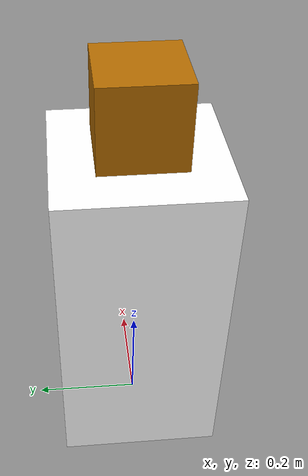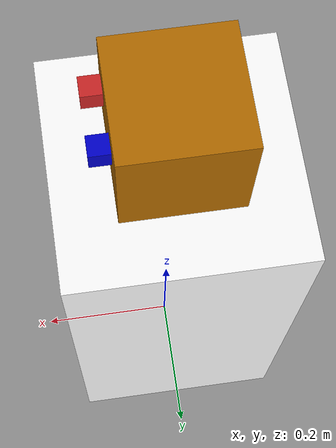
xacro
<?xml version="1.0"?>
<robot xmlns:xacro="http://www.ros.org/wiki/xacro" name="pan_tilt_bot">

  <!-- Documentation on URDF: http://wiki.ros.org/urdf/XML -->
  <!-- Documentation on Xacro: http://wiki.ros.org/xacro -->

  <!-- Xacro properties are constants. -->
  <!-- Size of square 'camera' box -->
  <xacro:property name="camera_link" value="0.025" />

  <!-- Dimensions of base. -->
  <xacro:property name="base_link_size_x" value="0.6" />
  <xacro:property name="base_link_size_y" value="0.3" />
  <xacro:property name="base_link_size_z" value="0.3"/>

  <!-- Dimensions of head. -->
  <xacro:property name="head_link_size_x" value="0.15" />
  <xacro:property name="head_link_size_y" value="0.15" />
  <xacro:property name="head_link_size_z" value="0.15" />

  <!-- Origin position of head.  -->

  <xacro:property name="head_link_origin_x" value="0" />
  <xacro:property name="head_link_origin_y" value="0" />
  <xacro:property name="head_link_origin_z" value="0" />

  <!-- Import all Gazebo-customisation elements, including Gazebo colours. -->
  <xacro:include filename="$(find pan_tilt_description)/urdf/pan_tilt.gazebo" />

  <!-- Import Rviz colours. -->
  <xacro:include filename="$(find pan_tilt_description)/urdf/materials.xacro" />

  <link name="world"/>

  <!-- Description of base. -->
  <link name="base_link">
    <collision>
      <geometry>
        <box size="${base_link_size_x} ${base_link_size_y} ${base_link_size_z}"/>
      </geometry>
      <origin rpy="0 1.57075 0" xyz="0 0 0.3"/>
    </collision>

    <visual>
      <geometry>
      <!-- http://wiki.ros.org/rviz/DisplayTypes/Axes -->
      <!-- Red, Green, Blue -->
        <box size="${base_link_size_x} ${base_link_size_y} ${base_link_size_z}"/>
      </geometry>
      <origin rpy="0 1.57075 0" xyz="0 0 0.3"/>
      <material name="white" />
    </visual>

    <inertial>
      <origin xyz="0 0 0" rpy="0 0 0"/>
      <mass value="1"/>
      <inertia
        ixx="1.0" ixy="0.0" ixz="0.0"
        iyy="1.0" iyz="0.0"
        izz="1.0"/>
    </inertial>
  </link>

  <!-- Description of head. -->
  <link name="head_link">
    <collision>
      <geometry>
        <box size="${head_link_size_x} ${head_link_size_y} ${head_link_size_z}" />
      </geometry>
      <origin rpy="0 0 0" xyz="${head_link_origin_x} ${head_link_origin_y} ${head_link_origin_z}"/>
    </collision>

    <visual>
      <geometry>
        <box size="${head_link_size_x} ${head_link_size_y} ${head_link_size_z}" />
      </geometry>
      <origin rpy="0 0 0" xyz="${head_link_origin_x} ${head_link_origin_y} ${head_link_origin_z}"/>
      <material name="orange" />
    </visual>

    <inertial>
      <origin xyz="0 0 0" rpy="0 0 0"/>
      <mass value="1"/>
      <inertia
        ixx="1.0" ixy="0.0" ixz="0.0"
        iyy="1.0" iyz="0.0"
        izz="1.0"/>
    </inertial>

  </link>

  <!-- Description of right camera. -->
  <link name="camera_link_right">
    <collision>
      <geometry>
        <box size="${camera_link} ${camera_link} ${camera_link}"/>
      </geometry>
    </collision>

    <visual>
      <geometry>
         <box size="${camera_link} ${camera_link} ${camera_link}"/>
      </geometry>
      <origin rpy="0 1.57075 0" xyz="0.025 0 0"/>
    </visual>

    <inertial>
      <mass value="1e-5" />
      <inertia ixx="1e-6" ixy="0" ixz="0" iyy="1e-6" iyz="0" izz="1e-6" />
      <origin xyz="0 0 0" rpy="0 0 0" />
    </inertial>
  </link>

  <!-- Description of left camera. -->
  <link name="camera_link_left">
    <collision>
      <geometry>
        <box size="${camera_link} ${camera_link} ${camera_link}"/>
      </geometry>
    </collision>

    <visual>
      <geometry>
         <box size="${camera_link} ${camera_link} ${camera_link}"/>
      </geometry>
      <origin rpy="0 1.57075 0" xyz="0.025 0.070 0"/>
       <material name="blue" />
    </visual>

    <inertial>
      <mass value="1e-5" />
      <inertia ixx="1e-6" ixy="0" ixz="0" iyy="1e-6" iyz="0" izz="1e-6" />
      <origin xyz="0 0 0" rpy="0 0 0" />
    </inertial>
  </link>

  <!-- Attach right camera to head. -->
  <joint name="right_cam_to_head" type="fixed">
    <axis xyz="0 1 0" />
    <!-- Determine measurements xyz. -->
    <origin rpy="0 0 0" xyz="0.063 -0.035 0.035" />
    <parent link="head_link" />
    <child link="camera_link_right" />
  </joint>

  <!-- Attach left camera to head. -->
  <joint name="left_cam_to_head" type="fixed">
    <axis xyz="0 1 0" />
    <!-- Determine measurements xyz. -->
    <origin rpy="0 0 0" xyz="0.063 -0.035 0.035" />
    <parent link="head_link" />
    <child link="camera_link_left" />
  </joint>

  <!-- Attach base to world. -->
  <joint name="base_to_world" type="fixed">
    <parent link="world"/>
    <child link="base_link"/>
  </joint>

  <!-- Roll is around x, yaw is around z, and pitch is around y. -->

  <!-- Connect head with base which allows the head to move in 3D. -->
  <joint name="head_to_base" type="revolute">
    <parent link="base_link" />
    <child link="head_link" />
    <limit effort="1000.0" lower="-1.571" upper="1.571" velocity="5.0"/>
	  <axis xyz="0 0 1"/>
    <origin xyz="0 0 0.68" />
  </joint>

  <!-- Use transmission to link motor to head joint. -->
  <transmission name="transmission1">
    <!-- Gazebo only supports transmission_interface/SimpleTransmission -->
    <type>transmission_interface/SimpleTransmission</type>
    <joint name="head_to_base">
      <hardwareInterface>hardware_interface/EffortJointInterface</hardwareInterface>
    </joint>
    <actuator name="actuator1">
      <hardwareInterface>EffortJointInterface</hardwareInterface>
      <mechanicalReduction>1</mechanicalReduction>
    </actuator>
  </transmission>

</robot>

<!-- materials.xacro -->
<robot>

  <material name="blue">
    <color rgba="0 0 0.8 1"/>
  </material>

  <material name="white">
    <color rgba="1 1 1 1"/>
  </material>

  <material name="orange">
    <color rgba="179.0 107.0 0.0 1.0"/>
  </material>

</robot>
